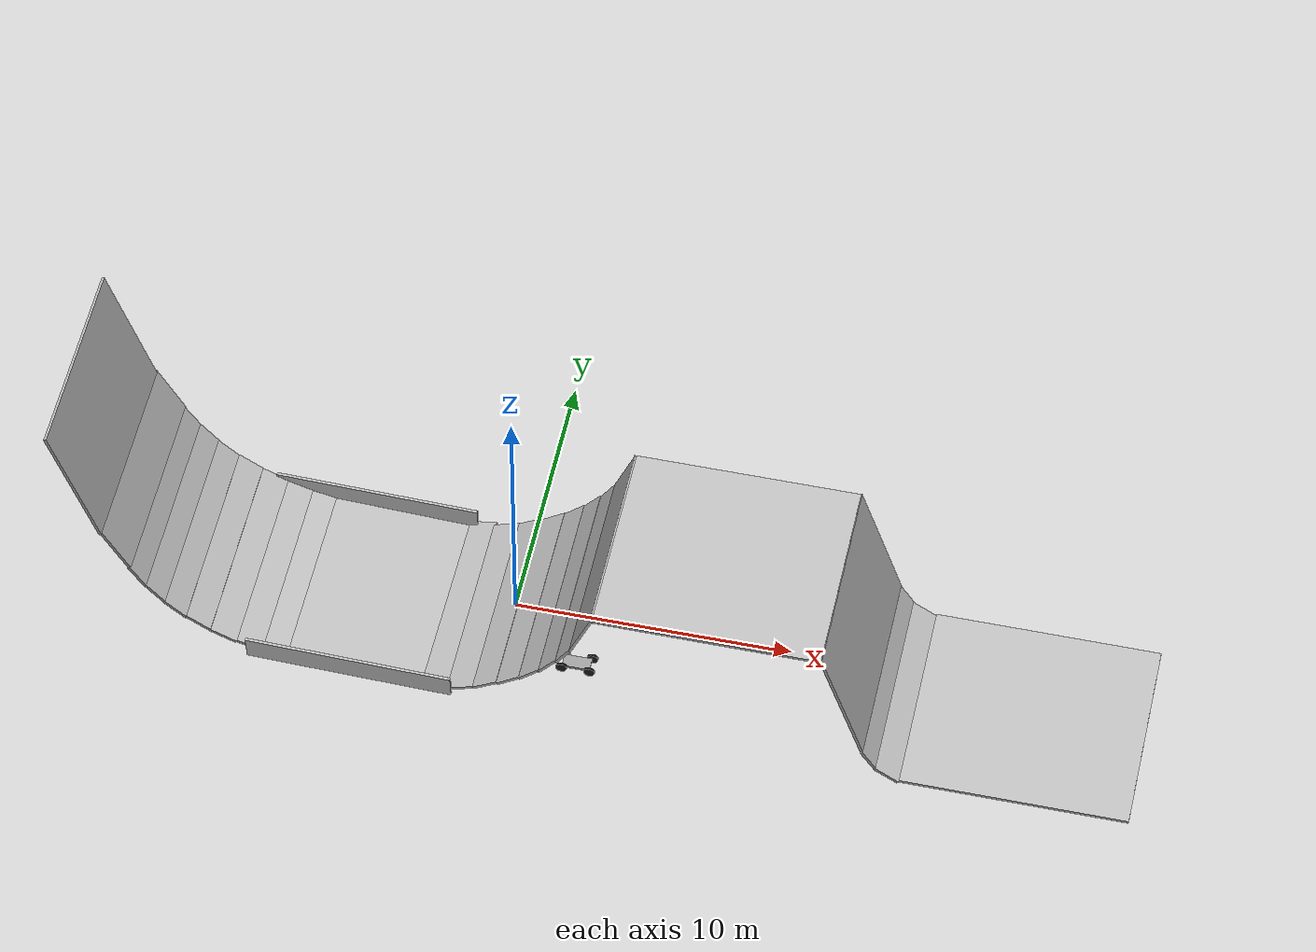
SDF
<sdf version="1.5">
 <world name="default">
  <scene><grid>false</grid></scene>
  <include><uri>model://ground_plane</uri></include>
  <include><uri>model://sun</uri></include>
  <include><uri>model://car</uri></include>
  <scene>
   <grid>0</grid>
   <ambient>0.4 0.4 0.4 1</ambient>
   <background>0.7 0.7 0.7 1</background>
   <shadows>1</shadows>
  </scene>
  <scene>
   <grid>0</grid>
   <ambient>0.4 0.4 0.4 1</ambient>
   <background>0.7 0.7 0.7 1</background>
   <shadows>1</shadows>
  </scene>
  <scene>
   <grid>0</grid>
   <ambient>0.4 0.4 0.4 1</ambient>
   <background>0.7 0.7 0.7 1</background>
   <shadows>1</shadows>
  </scene>
  <scene>
   <grid>0</grid>
   <ambient>0.4 0.4 0.4 1</ambient>
   <background>0.7 0.7 0.7 1</background>
   <shadows>1</shadows>
  </scene>
  <scene>
   <grid>0</grid>
   <ambient>0.4 0.4 0.4 1</ambient>
   <background>0.7 0.7 0.7 1</background>
   <shadows>1</shadows>
  </scene>
  <scene>
   <grid>0</grid>
   <ambient>0.4 0.4 0.4 1</ambient>
   <background>0.7 0.7 0.7 1</background>
   <shadows>1</shadows>
  </scene>
  <model name="box2">
   <static>1</static>
   <pose>-13.9546 -1.96365 9.86468 0 1.25 0</pose>
   <link name="link">
    <collision name="collision"><geometry><box><size>5 7.34 0.1</size></box></geometry></collision>
    <visual name="visual"><geometry><box><size>5 7.34 0.1</size></box></geometry></visual>
   </link>
  </model>
  <model name="box3">
   <static>1</static>
   <pose>-12.7345 -1.90568 6.70199 0 1.07879 0</pose>
   <link name="link">
    <collision name="collision"><geometry><box><size>2 7.34 0.1</size></box></geometry></collision>
    <visual name="visual"><geometry><box><size>2 7.34 0.1</size></box></geometry></visual>
   </link>
  </model>
  <model name="box4">
   <static>1</static>
   <pose>-12.0288 -1.95298 5.45892 0 1 0</pose>
   <link name="link">
    <collision name="collision"><geometry><box><size>1 7.34 0.1</size></box></geometry></collision>
    <visual name="visual"><geometry><box><size>1 7.34 0.1</size></box></geometry></visual>
   </link>
  </model>
  <gravity>0 0 -9.8</gravity>
  <magnetic_field>6e-06 2.3e-05 -4.2e-05</magnetic_field>
  <atmosphere type="adiabatic"/>
  <physics type="ode">
   <max_step_size>0.001</max_step_size>
   <real_time_factor>1</real_time_factor>
   <real_time_update_rate>1000</real_time_update_rate>
  </physics>
  <spherical_coordinates>
   <surface_model>EARTH_WGS84</surface_model>
   <latitude_deg>0</latitude_deg>
   <longitude_deg>0</longitude_deg>
   <elevation>0</elevation>
   <heading_deg>0</heading_deg>
  </spherical_coordinates>
  <model name="box4_clone">
   <static>1</static>
   <pose>-11.4372 -1.95416 4.6597 0 0.866937 0</pose>
   <link name="link">
    <collision name="collision"><geometry><box><size>1 7.34 0.1</size></box></geometry></collision>
    <visual name="visual"><geometry><box><size>1 7.34 0.1</size></box></geometry></visual>
   </link>
  </model>
  <model name="box4_clone_clone">
   <static>1</static>
   <pose>-10.7516 -1.97335 3.95794 0 0.731359 0</pose>
   <link name="link">
    <collision name="collision"><geometry><box><size>1 7.34 0.1</size></box></geometry></collision>
    <visual name="visual"><geometry><box><size>1 7.34 0.1</size></box></geometry></visual>
   </link>
  </model>
  <model name="box4_clone_clone_clone">
   <static>1</static>
   <pose>-9.98301 -1.94929 3.37654 0 0.581043 0</pose>
   <link name="link">
    <collision name="collision"><geometry><box><size>1 7.34 0.1</size></box></geometry></collision>
    <visual name="visual"><geometry><box><size>1 7.34 0.1</size></box></geometry></visual>
   </link>
  </model>
  <model name="box4_clone_clone_clone_clone">
   <static>1</static>
   <pose>-9.09861 -1.95741 2.88893 0 0.434816 0</pose>
   <link name="link">
    <collision name="collision"><geometry><box><size>1 7.34 0.1</size></box></geometry></collision>
    <visual name="visual"><geometry><box><size>1 7.34 0.1</size></box></geometry></visual>
   </link>
  </model>
  <model name="box4_clone_clone_clone_clone_clone">
   <static>1</static>
   <pose>-8.18948 -1.90732 2.50992 0 0.351337 0</pose>
   <link name="link">
    <collision name="collision"><geometry><box><size>1 7.34 0.1</size></box></geometry></collision>
    <visual name="visual"><geometry><box><size>1 7.34 0.1</size></box></geometry></visual>
   </link>
  </model>
  <model name="box4_clone_clone_clone_clone_clone_clone">
   <static>1</static>
   <pose>-7.31607 -1.92122 2.23645 0 0.252904 0</pose>
   <link name="link">
    <collision name="collision"><geometry><box><size>1 7.34 0.1</size></box></geometry></collision>
    <visual name="visual"><geometry><box><size>1 7.34 0.1</size></box></geometry></visual>
   </link>
  </model>
  <model name="box2_clone_clone">
   <static>1</static>
   <pose>-4.49723 -1.9353 2.06843 -0.000283 0.024744 -0.003344</pose>
   <link name="link">
    <collision name="collision"><geometry><box><size>5 7.34 0.1</size></box></geometry></collision>
    <visual name="visual"><geometry><box><size>5 7.34 0.1</size></box></geometry></visual>
   </link>
  </model>
  <model name="box1_clone">
   <static>1</static>
   <pose>-878.821 5062.71 16.2056 0 1.3 0</pose>
   <link name="link">
    <collision name="collision"><geometry><box><size>8 7.34 0.1</size></box></geometry></collision>
    <visual name="visual"><geometry><box><size>8 7.34 0.1</size></box></geometry></visual>
   </link>
  </model>
  <model name="box4_clone_clone_clone_clone_clone_clone_clone">
   <static>1</static>
   <pose>-1.53196 -1.93749 2.14941 0.00201 -0.259831 -0.007823</pose>
   <link name="link">
    <collision name="collision"><geometry><box><size>1 7.34 0.1</size></box></geometry></collision>
    <visual name="visual"><geometry><box><size>1 7.34 0.1</size></box></geometry></visual>
   </link>
  </model>
  <model name="box4_clone_clone_clone_clone_clone_clone_clone_clone">
   <static>1</static>
   <pose>-0.619968 -2.08747 2.44711 0 -0.362159 0</pose>
   <link name="link">
    <collision name="collision"><geometry><box><size>1 7.34 0.1</size></box></geometry></collision>
    <visual name="visual"><geometry><box><size>1 7.34 0.1</size></box></geometry></visual>
   </link>
  </model>
  <model name="box4_clone_clone_clone_clone_clone_clone_clone_clone_clone">
   <static>1</static>
   <pose>0.262807 -2.11111 2.8877 0 -0.558533 0</pose>
   <link name="link">
    <collision name="collision"><geometry><box><size>1 7.34 0.1</size></box></geometry></collision>
    <visual name="visual"><geometry><box><size>1 7.34 0.1</size></box></geometry></visual>
   </link>
  </model>
  <model name="box4_clone_clone_clone_clone_clone_clone_clone_clone_clone_clone">
   <static>1</static>
   <pose>1.09946 -2.15072 3.43289 0 -0.634426 0</pose>
   <link name="link">
    <collision name="collision"><geometry><box><size>1 7.34 0.1</size></box></geometry></collision>
    <visual name="visual"><geometry><box><size>1 7.34 0.1</size></box></geometry></visual>
   </link>
  </model>
  <model name="box4_clone_clone_clone_clone_clone_clone_clone_clone_clone_clone_clone">
   <static>1</static>
   <pose>1.85795 -2.17665 4.04645 0 -0.756697 0</pose>
   <link name="link">
    <collision name="collision"><geometry><box><size>1 7.34 0.1</size></box></geometry></collision>
    <visual name="visual"><geometry><box><size>1 7.34 0.1</size></box></geometry></visual>
   </link>
  </model>
  <model name="box4_clone_clone_clone_clone_clone_clone_clone_clone_clone_clone_clone_clone">
   <static>1</static>
   <pose>2.5145 -2.21295 4.75118 0 -0.90249 0</pose>
   <link name="link">
    <collision name="collision"><geometry><box><size>1 7.34 0.1</size></box></geometry></collision>
    <visual name="visual"><geometry><box><size>1 7.34 0.1</size></box></geometry></visual>
   </link>
  </model>
  <model name="box4_clone_clone_clone_clone_clone_clone_clone_clone_clone_clone_clone_clone_clone">
   <static>1</static>
   <pose>3.09261 -2.24692 5.53715 0 -1.01454 0</pose>
   <link name="link">
    <collision name="collision"><geometry><box><size>1 7.34 0.1</size></box></geometry></collision>
    <visual name="visual"><geometry><box><size>1 7.34 0.1</size></box></geometry></visual>
   </link>
  </model>
  <model name="box3_clone">
   <static>1</static>
   <pose>3.69444 -2.25932 6.82213 0 -1.1916 0</pose>
   <link name="link">
    <collision name="collision"><geometry><box><size>2 7.34 0.1</size></box></geometry></collision>
    <visual name="visual"><geometry><box><size>2 7.34 0.1</size></box></geometry></visual>
   </link>
  </model>
  <model name="box1_clone_0">
   <static>1</static>
   <pose>7.9916 -2.21216 7.66936 3.14159 -0.0069 3.14159</pose>
   <link name="link">
    <collision name="collision"><geometry><box><size>8 7.34 0.1</size></box></geometry></collision>
    <visual name="visual"><geometry><box><size>8 7.34 0.1</size></box></geometry></visual>
   </link>
  </model>
  <model name="box2_clone_1_clone">
   <static>1</static>
   <pose>12.7255 -2.20261 5.31429 0 1.25 0</pose>
   <link name="link">
    <collision name="collision"><geometry><box><size>5 7.34 0.1</size></box></geometry></collision>
    <visual name="visual"><geometry><box><size>5 7.34 0.1</size></box></geometry></visual>
   </link>
  </model>
  <model name="box4_clone_0">
   <static>1</static>
   <pose>13.7834 -2.25239 2.54779 0 1 0</pose>
   <link name="link">
    <collision name="collision"><geometry><box><size>1 7.34 0.1</size></box></geometry></collision>
    <visual name="visual"><geometry><box><size>1 7.34 0.1</size></box></geometry></visual>
   </link>
  </model>
  <model name="box4_clone_clone_clone_clone_0">
   <static>1</static>
   <pose>14.4207 -2.28769 1.9401 0 0.581043 0</pose>
   <link name="link">
    <collision name="collision"><geometry><box><size>1 7.34 0.1</size></box></geometry></collision>
    <visual name="visual"><geometry><box><size>1 7.34 0.1</size></box></geometry></visual>
   </link>
  </model>
  <model name="box4_clone_clone_clone_clone_clone_clone_clone_clone_clone_clone_clone_0">
   <static>1</static>
   <pose>-4.63067 -5.66953 2.44632 -0.04857 -1.46152 -1.54479</pose>
   <link name="link">
    <collision name="collision"><geometry><box><size>1 7.34 0.1</size></box></geometry></collision>
    <visual name="visual"><geometry><box><size>1 7.34 0.1</size></box></geometry></visual>
   </link>
  </model>
  <model name="box4_clone_clone_clone_clone_clone_clone_clone_clone_clone_clone_clone_0_clone_clone_0_clone">
   <static>1</static>
   <pose>-5.35973 1.66451 2.49146 -0.04857 -1.46152 -1.54479</pose>
   <link name="link">
    <collision name="collision"><geometry><box><size>1 7.34 0.1</size></box></geometry></collision>
    <visual name="visual"><geometry><box><size>1 7.34 0.1</size></box></geometry></visual>
   </link>
  </model>
  <model name="box1_clone_0_clone">
   <static>1</static>
   <pose>18.841 -2.15998 1.54847 3.14159 -0.0069 3.14159</pose>
   <link name="link">
    <collision name="collision"><geometry><box><size>8 7.34 0.1</size></box></geometry></collision>
    <visual name="visual"><geometry><box><size>8 7.34 0.1</size></box></geometry></visual>
   </link>
  </model>
 </world>
</sdf>

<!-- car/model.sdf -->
<sdf version='1.7'>
    <model name="my_robot">
      <link name='chassis'>
        <pose>0 0 0.15 0 -0 0</pose>
        <inertial>
          <pose>0.1 0 0 0 -0 0</pose>
          <mass>10</mass>
          <inertia>
            <ixx>0.216667</ixx>
            <iyy>0.841667</iyy>
            <izz>1.04167</izz>
            <ixy>0</ixy>
            <ixz>0</ixz>
            <iyz>0</iyz>
          </inertia>
        </inertial>
        <collision name='collision'>
          <geometry>
            <box>
              <size>1 0.5 0.1</size>
            </box>
          </geometry>
          <max_contacts>10</max_contacts>
          <surface>
            <contact>
              <ode/>
            </contact>
            <bounce/>
            <friction>
              <torsional>
                <ode/>
              </torsional>
              <ode/>
            </friction>
          </surface>
        </collision>
        <visual name='visual'>
          <geometry>
            <box>
              <size>1 0.5 0.1</size>
            </box>
          </geometry>
          <material>
            <script>
              <uri>file://media/materials/scripts/gazebo.material</uri>
              <name>Gazebo/Grey</name>
            </script>
          </material>
        </visual>
        <self_collide>0</self_collide>
        <enable_wind>0</enable_wind>
        <kinematic>0</kinematic>
      </link>
      <link name='wheel_front_left'>
        <pose>0.5 0.298 0.15 -1.5708 -0.087266 0</pose>
        <inertial>
          <mass>0.5</mass>
          <inertia>
            <ixx>0.00307917</ixx>
            <iyy>0.00307917</iyy>
            <izz>0.005625</izz>
            <ixy>0</ixy>
            <ixz>0</ixz>
            <iyz>0</iyz>
          </inertia>
          <pose>0 0 0 0 -0 0</pose>
        </inertial>
        <collision name='collision'>
          <geometry>
            <cylinder>
              <radius>0.2</radius>
              <length>0.08</length>
            </cylinder>
          </geometry>
          <max_contacts>10</max_contacts>
          <surface>
            <contact>
              <ode/>
            </contact>
            <bounce/>
            <friction>
              <torsional>
                <ode/>
              </torsional>
              <ode/>
            </friction>
          </surface>
        </collision>
        <visual name='visual'>
          <geometry>
            <cylinder>
              <radius>0.2</radius>
              <length>0.08</length>
            </cylinder>
          </geometry>
          <material>
            <script>
              <uri>file://media/materials/scripts/gazebo.material</uri>
              <name>Gazebo/Black</name>
            </script>
          </material>
        </visual>
        <self_collide>0</self_collide>
        <enable_wind>0</enable_wind>
        <kinematic>0</kinematic>
      </link>
      <joint name='wheel_front_left_steer' type='revolute'>
        <parent>chassis</parent>
        <child>wheel_front_left</child>
        <axis>
          <xyz>0 0 1</xyz>
          <limit>
            <upper>1e+16</upper>
            <lower>-1e+16</lower>
          </limit>
          <dynamics>
            <spring_reference>0</spring_reference>
            <spring_stiffness>0</spring_stiffness>
          </dynamics>
        </axis>
      </joint>
      <link name='wheel_front_right'>
        <pose>0.5 -0.298 0.15 -1.5708 -0.087266 0</pose>
        <inertial>
          <mass>0.5</mass>
          <inertia>
            <ixx>0.00307917</ixx>
            <iyy>0.00307917</iyy>
            <izz>0.005625</izz>
            <ixy>0</ixy>
            <ixz>0</ixz>
            <iyz>0</iyz>
          </inertia>
          <pose>0 0 0 0 -0 0</pose>
        </inertial>
        <collision name='collision'>
          <geometry>
            <cylinder>
              <radius>0.2</radius>
              <length>0.08</length>
            </cylinder>
          </geometry>
          <max_contacts>10</max_contacts>
          <surface>
            <contact>
              <ode/>
            </contact>
            <bounce/>
            <friction>
              <torsional>
                <ode/>
              </torsional>
              <ode/>
            </friction>
          </surface>
        </collision>
        <visual name='visual'>
          <geometry>
            <cylinder>
              <radius>0.2</radius>
              <length>0.08</length>
            </cylinder>
          </geometry>
          <material>
            <script>
              <uri>file://media/materials/scripts/gazebo.material</uri>
              <name>Gazebo/Black</name>
            </script>
          </material>
        </visual>
        <self_collide>0</self_collide>
        <enable_wind>0</enable_wind>
        <kinematic>0</kinematic>
      </link>
      <joint name='wheel_front_right_steer' type='revolute'>
        <parent>chassis</parent>
        <child>wheel_front_right</child>
        <axis>
          <xyz>0 0 1</xyz>
          <limit>
            <upper>1e+16</upper>
            <lower>-1e+16</lower>
          </limit>
          <dynamics>
            <spring_reference>0</spring_reference>
            <spring_stiffness>0</spring_stiffness>
          </dynamics>
        </axis>
      </joint>
      <link name='wheel_rear_left'>
        <pose>-0.5 0.298 0.15 -1.5708 0 0</pose>
        <inertial>
          <mass>0.5</mass>
          <inertia>
            <ixx>0.00307917</ixx>
            <iyy>0.00307917</iyy>
            <izz>0.005625</izz>
            <ixy>0</ixy>
            <ixz>0</ixz>
            <iyz>0</iyz>
          </inertia>
          <pose>0 0 0 0 -0 0</pose>
        </inertial>
        <collision name='collision'>
          <geometry>
            <cylinder>
              <radius>0.2</radius>
              <length>0.08</length>
            </cylinder>
          </geometry>
          <max_contacts>10</max_contacts>
          <surface>
            <contact>
              <ode/>
            </contact>
            <bounce/>
            <friction>
              <torsional>
                <ode/>
              </torsional>
              <ode/>
            </friction>
          </surface>
        </collision>
        <visual name='visual'>
          <geometry>
            <cylinder>
              <radius>0.2</radius>
              <length>0.08</length>
            </cylinder>
          </geometry>
          <material>
            <script>
              <uri>file://media/materials/scripts/gazebo.material</uri>
              <name>Gazebo/Black</name>
            </script>
          </material>
        </visual>
        <self_collide>0</self_collide>
        <enable_wind>0</enable_wind>
        <kinematic>0</kinematic>
      </link>
      <joint name='left_wheel_back' type='revolute'>
        <parent>chassis</parent>
        <child>wheel_rear_left</child>
        <axis>
          <xyz>0 0 1</xyz>
          <limit>
            <lower>-1e+16</lower>
            <upper>1e+16</upper>
          </limit>
          <dynamics>
            <spring_reference>0</spring_reference>
            <spring_stiffness>0</spring_stiffness>
          </dynamics>
        </axis>
      </joint>
      <link name='wheel_rear_right'>
        <pose>-0.5 -0.298 0.15 -1.5708 0 0</pose>
        <inertial>
          <mass>0.5</mass>
          <inertia>
            <ixx>0.00307917</ixx>
            <iyy>0.00307917</iyy>
            <izz>0.005625</izz>
            <ixy>0</ixy>
            <ixz>0</ixz>
            <iyz>0</iyz>
          </inertia>
          <pose>0 0 0 0 -0 0</pose>
        </inertial>
        <collision name='collision'>
          <geometry>
            <cylinder>
              <radius>0.2</radius>
              <length>0.08</length>
            </cylinder>
          </geometry>
          <max_contacts>10</max_contacts>
          <surface>
            <contact>
              <ode/>
            </contact>
            <bounce/>
            <friction>
              <torsional>
                <ode/>
              </torsional>
              <ode/>
            </friction>
          </surface>
        </collision>
        <visual name='visual'>
          <geometry>
            <cylinder>
              <radius>0.2</radius>
              <length>0.08</length>
            </cylinder>
          </geometry>
          <material>
            <script>
              <uri>file://media/materials/scripts/gazebo.material</uri>
              <name>Gazebo/Black</name>
            </script>
          </material>
        </visual>
        <self_collide>0</self_collide>
        <enable_wind>0</enable_wind>
        <kinematic>0</kinematic>
      </link>
      <joint name='right_wheel_back' type='revolute'>
        <parent>chassis</parent>
        <child>wheel_rear_right</child>
        <axis>
          <xyz>0 0 1</xyz>
          <limit>
            <lower>-1e+16</lower>
            <upper>1e+16</upper>
          </limit>
          <dynamics>
            <spring_reference>0</spring_reference>
            <spring_stiffness>0</spring_stiffness>
          </dynamics>
        </axis>
      </joint>
      <pose>2.7216 -2.1701 0 0 -0 0</pose>
    </model>
</sdf>
